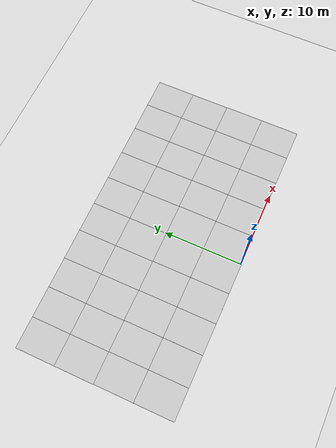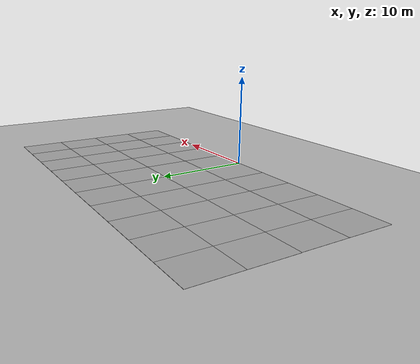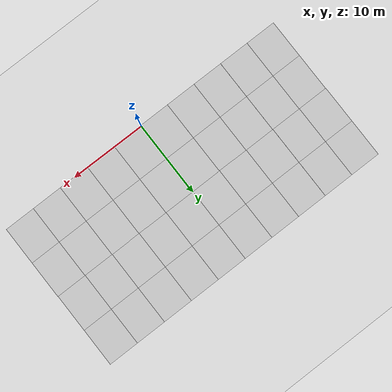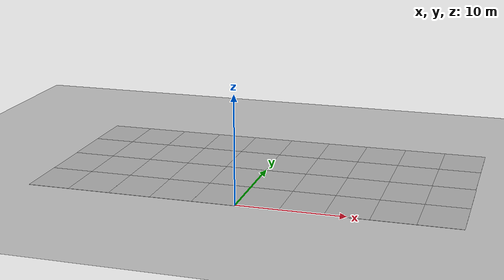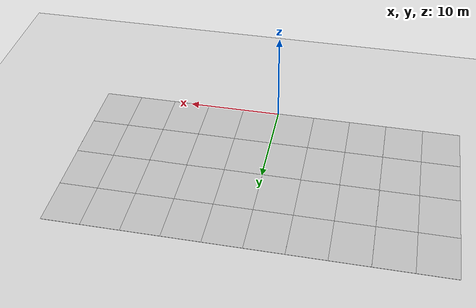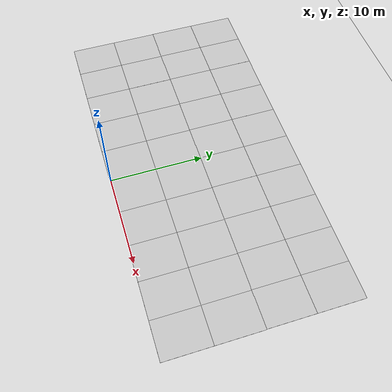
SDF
<sdf version="1.6">
 <world name="default">
  <model name="ground_plane">
   <static>1</static>
   <link name="link">
    <collision name="collision">
     <geometry><plane><normal>0 0 1</normal><size>100 100</size></plane></geometry>
     <surface>
      <contact><collide_bitmask>65535</collide_bitmask></contact>
      <friction><ode><mu>100</mu><mu2>50</mu2></ode></friction>
     </surface>
    </collision>
    <visual name="visual">
     <cast_shadows>0</cast_shadows>
     <geometry><plane><normal>0 0 1</normal><size>100 100</size></plane></geometry>
     <material>
      <script><uri>file://media/materials/scripts/gazebo.material</uri><name>Gazebo/Grey</name></script>
     </material>
    </visual>
   </link>
  </model>
  <model name="Ground_Soil_1">
   <model name="mud_box">
    <static>1</static>
    <link name="link">
     <collision name="collision"><geometry><box><size>8 10 0.02</size></box></geometry></collision>
     <visual name="visual_1">
      <pose>-2 2.5 0 0 -0 0</pose>
      <cast_shadows>0</cast_shadows>
      <geometry><box><size>4 5 0.02</size></box></geometry>
      <material>
       <script>
        <uri>model://mud_box/materials/scripts</uri>
        <uri>model://mud_box/materials/textures</uri>
        <name>vrc/mud</name>
       </script>
      </material>
     </visual>
     <visual name="visual_2">
      <pose>2 2.5 0 0 -0 0</pose>
      <cast_shadows>0</cast_shadows>
      <geometry><box><size>4 5 0.02</size></box></geometry>
      <material>
       <script>
        <uri>model://mud_box/materials/scripts</uri>
        <uri>model://mud_box/materials/textures</uri>
        <name>vrc/mud</name>
       </script>
      </material>
     </visual>
     <visual name="visual_3">
      <pose>2 -2.5 0 0 -0 0</pose>
      <cast_shadows>0</cast_shadows>
      <geometry><box><size>4 5 0.02</size></box></geometry>
      <material>
       <script>
        <uri>model://mud_box/materials/scripts</uri>
        <uri>model://mud_box/materials/textures</uri>
        <name>vrc/mud</name>
       </script>
      </material>
     </visual>
     <visual name="visual_4">
      <pose>-2 -2.5 0 0 -0 0</pose>
      <cast_shadows>0</cast_shadows>
      <geometry><box><size>4 5 0.02</size></box></geometry>
      <material>
       <script>
        <uri>model://mud_box/materials/scripts</uri>
        <uri>model://mud_box/materials/textures</uri>
        <name>vrc/mud</name>
       </script>
      </material>
     </visual>
    </link>
    <pose>-16.0013 0.000118 0 0 -0 0</pose>
   </model>
   <model name="mud_box_0">
    <static>1</static>
    <link name="link">
     <collision name="collision"><geometry><box><size>8 10 0.02</size></box></geometry></collision>
     <visual name="visual_1">
      <pose>-2 2.5 0 0 -0 0</pose>
      <cast_shadows>0</cast_shadows>
      <geometry><box><size>4 5 0.02</size></box></geometry>
      <material>
       <script>
        <uri>model://mud_box/materials/scripts</uri>
        <uri>model://mud_box/materials/textures</uri>
        <name>vrc/mud</name>
       </script>
      </material>
     </visual>
     <visual name="visual_2">
      <pose>2 2.5 0 0 -0 0</pose>
      <cast_shadows>0</cast_shadows>
      <geometry><box><size>4 5 0.02</size></box></geometry>
      <material>
       <script>
        <uri>model://mud_box/materials/scripts</uri>
        <uri>model://mud_box/materials/textures</uri>
        <name>vrc/mud</name>
       </script>
      </material>
     </visual>
     <visual name="visual_3">
      <pose>2 -2.5 0 0 -0 0</pose>
      <cast_shadows>0</cast_shadows>
      <geometry><box><size>4 5 0.02</size></box></geometry>
      <material>
       <script>
        <uri>model://mud_box/materials/scripts</uri>
        <uri>model://mud_box/materials/textures</uri>
        <name>vrc/mud</name>
       </script>
      </material>
     </visual>
     <visual name="visual_4">
      <pose>-2 -2.5 0 0 -0 0</pose>
      <cast_shadows>0</cast_shadows>
      <geometry><box><size>4 5 0.02</size></box></geometry>
      <material>
       <script>
        <uri>model://mud_box/materials/scripts</uri>
        <uri>model://mud_box/materials/textures</uri>
        <name>vrc/mud</name>
       </script>
      </material>
     </visual>
    </link>
    <pose>-7.99939 9.1e-05 0 0 -0 0</pose>
   </model>
   <model name="mud_box_1">
    <static>1</static>
    <link name="link">
     <collision name="collision"><geometry><box><size>8 10 0.02</size></box></geometry></collision>
     <visual name="visual_1">
      <pose>-2 2.5 0 0 -0 0</pose>
      <cast_shadows>0</cast_shadows>
      <geometry><box><size>4 5 0.02</size></box></geometry>
      <material>
       <script>
        <uri>model://mud_box/materials/scripts</uri>
        <uri>model://mud_box/materials/textures</uri>
        <name>vrc/mud</name>
       </script>
      </material>
     </visual>
     <visual name="visual_2">
      <pose>2 2.5 0 0 -0 0</pose>
      <cast_shadows>0</cast_shadows>
      <geometry><box><size>4 5 0.02</size></box></geometry>
      <material>
       <script>
        <uri>model://mud_box/materials/scripts</uri>
        <uri>model://mud_box/materials/textures</uri>
        <name>vrc/mud</name>
       </script>
      </material>
     </visual>
     <visual name="visual_3">
      <pose>2 -2.5 0 0 -0 0</pose>
      <cast_shadows>0</cast_shadows>
      <geometry><box><size>4 5 0.02</size></box></geometry>
      <material>
       <script>
        <uri>model://mud_box/materials/scripts</uri>
        <uri>model://mud_box/materials/textures</uri>
        <name>vrc/mud</name>
       </script>
      </material>
     </visual>
     <visual name="visual_4">
      <pose>-2 -2.5 0 0 -0 0</pose>
      <cast_shadows>0</cast_shadows>
      <geometry><box><size>4 5 0.02</size></box></geometry>
      <material>
       <script>
        <uri>model://mud_box/materials/scripts</uri>
        <uri>model://mud_box/materials/textures</uri>
        <name>vrc/mud</name>
       </script>
      </material>
     </visual>
    </link>
    <pose>0.000809 -0.000342 0 0 -0 0</pose>
   </model>
   <model name="mud_box_2">
    <static>1</static>
    <link name="link">
     <collision name="collision"><geometry><box><size>8 10 0.02</size></box></geometry></collision>
     <visual name="visual_1">
      <pose>-2 2.5 0 0 -0 0</pose>
      <cast_shadows>0</cast_shadows>
      <geometry><box><size>4 5 0.02</size></box></geometry>
      <material>
       <script>
        <uri>model://mud_box/materials/scripts</uri>
        <uri>model://mud_box/materials/textures</uri>
        <name>vrc/mud</name>
       </script>
      </material>
     </visual>
     <visual name="visual_2">
      <pose>2 2.5 0 0 -0 0</pose>
      <cast_shadows>0</cast_shadows>
      <geometry><box><size>4 5 0.02</size></box></geometry>
      <material>
       <script>
        <uri>model://mud_box/materials/scripts</uri>
        <uri>model://mud_box/materials/textures</uri>
        <name>vrc/mud</name>
       </script>
      </material>
     </visual>
     <visual name="visual_3">
      <pose>2 -2.5 0 0 -0 0</pose>
      <cast_shadows>0</cast_shadows>
      <geometry><box><size>4 5 0.02</size></box></geometry>
      <material>
       <script>
        <uri>model://mud_box/materials/scripts</uri>
        <uri>model://mud_box/materials/textures</uri>
        <name>vrc/mud</name>
       </script>
      </material>
     </visual>
     <visual name="visual_4">
      <pose>-2 -2.5 0 0 -0 0</pose>
      <cast_shadows>0</cast_shadows>
      <geometry><box><size>4 5 0.02</size></box></geometry>
      <material>
       <script>
        <uri>model://mud_box/materials/scripts</uri>
        <uri>model://mud_box/materials/textures</uri>
        <name>vrc/mud</name>
       </script>
      </material>
     </visual>
    </link>
    <pose>8.00089 -0.000148 0 0 -0 0</pose>
   </model>
   <model name="mud_box_3">
    <static>1</static>
    <link name="link">
     <collision name="collision"><geometry><box><size>8 10 0.02</size></box></geometry></collision>
     <visual name="visual_1">
      <pose>-2 2.5 0 0 -0 0</pose>
      <cast_shadows>0</cast_shadows>
      <geometry><box><size>4 5 0.02</size></box></geometry>
      <material>
       <script>
        <uri>model://mud_box/materials/scripts</uri>
        <uri>model://mud_box/materials/textures</uri>
        <name>vrc/mud</name>
       </script>
      </material>
     </visual>
     <visual name="visual_2">
      <pose>2 2.5 0 0 -0 0</pose>
      <cast_shadows>0</cast_shadows>
      <geometry><box><size>4 5 0.02</size></box></geometry>
      <material>
       <script>
        <uri>model://mud_box/materials/scripts</uri>
        <uri>model://mud_box/materials/textures</uri>
        <name>vrc/mud</name>
       </script>
      </material>
     </visual>
     <visual name="visual_3">
      <pose>2 -2.5 0 0 -0 0</pose>
      <cast_shadows>0</cast_shadows>
      <geometry><box><size>4 5 0.02</size></box></geometry>
      <material>
       <script>
        <uri>model://mud_box/materials/scripts</uri>
        <uri>model://mud_box/materials/textures</uri>
        <name>vrc/mud</name>
       </script>
      </material>
     </visual>
     <visual name="visual_4">
      <pose>-2 -2.5 0 0 -0 0</pose>
      <cast_shadows>0</cast_shadows>
      <geometry><box><size>4 5 0.02</size></box></geometry>
      <material>
       <script>
        <uri>model://mud_box/materials/scripts</uri>
        <uri>model://mud_box/materials/textures</uri>
        <name>vrc/mud</name>
       </script>
      </material>
     </visual>
    </link>
    <pose>15.9991 0.000313 0 0 -0 0</pose>
   </model>
   <static>0</static>
   <pose>-0.0126 4.89814 0 0 -0 0</pose>
  </model>
  <model name="Ground_Soil_2">
   <model name="mud_box">
    <static>1</static>
    <link name="link">
     <collision name="collision"><geometry><box><size>8 10 0.02</size></box></geometry></collision>
     <visual name="visual_1">
      <pose>-2 2.5 0 0 -0 0</pose>
      <cast_shadows>0</cast_shadows>
      <geometry><box><size>4 5 0.02</size></box></geometry>
      <material>
       <script>
        <uri>model://mud_box/materials/scripts</uri>
        <uri>model://mud_box/materials/textures</uri>
        <name>vrc/mud</name>
       </script>
      </material>
     </visual>
     <visual name="visual_2">
      <pose>2 2.5 0 0 -0 0</pose>
      <cast_shadows>0</cast_shadows>
      <geometry><box><size>4 5 0.02</size></box></geometry>
      <material>
       <script>
        <uri>model://mud_box/materials/scripts</uri>
        <uri>model://mud_box/materials/textures</uri>
        <name>vrc/mud</name>
       </script>
      </material>
     </visual>
     <visual name="visual_3">
      <pose>2 -2.5 0 0 -0 0</pose>
      <cast_shadows>0</cast_shadows>
      <geometry><box><size>4 5 0.02</size></box></geometry>
      <material>
       <script>
        <uri>model://mud_box/materials/scripts</uri>
        <uri>model://mud_box/materials/textures</uri>
        <name>vrc/mud</name>
       </script>
      </material>
     </visual>
     <visual name="visual_4">
      <pose>-2 -2.5 0 0 -0 0</pose>
      <cast_shadows>0</cast_shadows>
      <geometry><box><size>4 5 0.02</size></box></geometry>
      <material>
       <script>
        <uri>model://mud_box/materials/scripts</uri>
        <uri>model://mud_box/materials/textures</uri>
        <name>vrc/mud</name>
       </script>
      </material>
     </visual>
    </link>
    <pose>-16.0013 0.000118 0 0 -0 0</pose>
   </model>
   <model name="mud_box_0">
    <static>1</static>
    <link name="link">
     <collision name="collision"><geometry><box><size>8 10 0.02</size></box></geometry></collision>
     <visual name="visual_1">
      <pose>-2 2.5 0 0 -0 0</pose>
      <cast_shadows>0</cast_shadows>
      <geometry><box><size>4 5 0.02</size></box></geometry>
      <material>
       <script>
        <uri>model://mud_box/materials/scripts</uri>
        <uri>model://mud_box/materials/textures</uri>
        <name>vrc/mud</name>
       </script>
      </material>
     </visual>
     <visual name="visual_2">
      <pose>2 2.5 0 0 -0 0</pose>
      <cast_shadows>0</cast_shadows>
      <geometry><box><size>4 5 0.02</size></box></geometry>
      <material>
       <script>
        <uri>model://mud_box/materials/scripts</uri>
        <uri>model://mud_box/materials/textures</uri>
        <name>vrc/mud</name>
       </script>
      </material>
     </visual>
     <visual name="visual_3">
      <pose>2 -2.5 0 0 -0 0</pose>
      <cast_shadows>0</cast_shadows>
      <geometry><box><size>4 5 0.02</size></box></geometry>
      <material>
       <script>
        <uri>model://mud_box/materials/scripts</uri>
        <uri>model://mud_box/materials/textures</uri>
        <name>vrc/mud</name>
       </script>
      </material>
     </visual>
     <visual name="visual_4">
      <pose>-2 -2.5 0 0 -0 0</pose>
      <cast_shadows>0</cast_shadows>
      <geometry><box><size>4 5 0.02</size></box></geometry>
      <material>
       <script>
        <uri>model://mud_box/materials/scripts</uri>
        <uri>model://mud_box/materials/textures</uri>
        <name>vrc/mud</name>
       </script>
      </material>
     </visual>
    </link>
    <pose>-7.99939 9.1e-05 0 0 -0 0</pose>
   </model>
   <model name="mud_box_1">
    <static>1</static>
    <link name="link">
     <collision name="collision"><geometry><box><size>8 10 0.02</size></box></geometry></collision>
     <visual name="visual_1">
      <pose>-2 2.5 0 0 -0 0</pose>
      <cast_shadows>0</cast_shadows>
      <geometry><box><size>4 5 0.02</size></box></geometry>
      <material>
       <script>
        <uri>model://mud_box/materials/scripts</uri>
        <uri>model://mud_box/materials/textures</uri>
        <name>vrc/mud</name>
       </script>
      </material>
     </visual>
     <visual name="visual_2">
      <pose>2 2.5 0 0 -0 0</pose>
      <cast_shadows>0</cast_shadows>
      <geometry><box><size>4 5 0.02</size></box></geometry>
      <material>
       <script>
        <uri>model://mud_box/materials/scripts</uri>
        <uri>model://mud_box/materials/textures</uri>
        <name>vrc/mud</name>
       </script>
      </material>
     </visual>
     <visual name="visual_3">
      <pose>2 -2.5 0 0 -0 0</pose>
      <cast_shadows>0</cast_shadows>
      <geometry><box><size>4 5 0.02</size></box></geometry>
      <material>
       <script>
        <uri>model://mud_box/materials/scripts</uri>
        <uri>model://mud_box/materials/textures</uri>
        <name>vrc/mud</name>
       </script>
      </material>
     </visual>
     <visual name="visual_4">
      <pose>-2 -2.5 0 0 -0 0</pose>
      <cast_shadows>0</cast_shadows>
      <geometry><box><size>4 5 0.02</size></box></geometry>
      <material>
       <script>
        <uri>model://mud_box/materials/scripts</uri>
        <uri>model://mud_box/materials/textures</uri>
        <name>vrc/mud</name>
       </script>
      </material>
     </visual>
    </link>
    <pose>0.000809 -0.000342 0 0 -0 0</pose>
   </model>
   <model name="mud_box_2">
    <static>1</static>
    <link name="link">
     <collision name="collision"><geometry><box><size>8 10 0.02</size></box></geometry></collision>
     <visual name="visual_1">
      <pose>-2 2.5 0 0 -0 0</pose>
      <cast_shadows>0</cast_shadows>
      <geometry><box><size>4 5 0.02</size></box></geometry>
      <material>
       <script>
        <uri>model://mud_box/materials/scripts</uri>
        <uri>model://mud_box/materials/textures</uri>
        <name>vrc/mud</name>
       </script>
      </material>
     </visual>
     <visual name="visual_2">
      <pose>2 2.5 0 0 -0 0</pose>
      <cast_shadows>0</cast_shadows>
      <geometry><box><size>4 5 0.02</size></box></geometry>
      <material>
       <script>
        <uri>model://mud_box/materials/scripts</uri>
        <uri>model://mud_box/materials/textures</uri>
        <name>vrc/mud</name>
       </script>
      </material>
     </visual>
     <visual name="visual_3">
      <pose>2 -2.5 0 0 -0 0</pose>
      <cast_shadows>0</cast_shadows>
      <geometry><box><size>4 5 0.02</size></box></geometry>
      <material>
       <script>
        <uri>model://mud_box/materials/scripts</uri>
        <uri>model://mud_box/materials/textures</uri>
        <name>vrc/mud</name>
       </script>
      </material>
     </visual>
     <visual name="visual_4">
      <pose>-2 -2.5 0 0 -0 0</pose>
      <cast_shadows>0</cast_shadows>
      <geometry><box><size>4 5 0.02</size></box></geometry>
      <material>
       <script>
        <uri>model://mud_box/materials/scripts</uri>
        <uri>model://mud_box/materials/textures</uri>
        <name>vrc/mud</name>
       </script>
      </material>
     </visual>
    </link>
    <pose>8.00089 -0.000148 0 0 -0 0</pose>
   </model>
   <model name="mud_box_3">
    <static>1</static>
    <link name="link">
     <collision name="collision"><geometry><box><size>8 10 0.02</size></box></geometry></collision>
     <visual name="visual_1">
      <pose>-2 2.5 0 0 -0 0</pose>
      <cast_shadows>0</cast_shadows>
      <geometry><box><size>4 5 0.02</size></box></geometry>
      <material>
       <script>
        <uri>model://mud_box/materials/scripts</uri>
        <uri>model://mud_box/materials/textures</uri>
        <name>vrc/mud</name>
       </script>
      </material>
     </visual>
     <visual name="visual_2">
      <pose>2 2.5 0 0 -0 0</pose>
      <cast_shadows>0</cast_shadows>
      <geometry><box><size>4 5 0.02</size></box></geometry>
      <material>
       <script>
        <uri>model://mud_box/materials/scripts</uri>
        <uri>model://mud_box/materials/textures</uri>
        <name>vrc/mud</name>
       </script>
      </material>
     </visual>
     <visual name="visual_3">
      <pose>2 -2.5 0 0 -0 0</pose>
      <cast_shadows>0</cast_shadows>
      <geometry><box><size>4 5 0.02</size></box></geometry>
      <material>
       <script>
        <uri>model://mud_box/materials/scripts</uri>
        <uri>model://mud_box/materials/textures</uri>
        <name>vrc/mud</name>
       </script>
      </material>
     </visual>
     <visual name="visual_4">
      <pose>-2 -2.5 0 0 -0 0</pose>
      <cast_shadows>0</cast_shadows>
      <geometry><box><size>4 5 0.02</size></box></geometry>
      <material>
       <script>
        <uri>model://mud_box/materials/scripts</uri>
        <uri>model://mud_box/materials/textures</uri>
        <name>vrc/mud</name>
       </script>
      </material>
     </visual>
    </link>
    <pose>15.9991 0.000313 0 0 -0 0</pose>
   </model>
   <static>0</static>
   <pose>-0.0462 14.8693 0 0 -0 0</pose>
  </model>
 </world>
</sdf>
